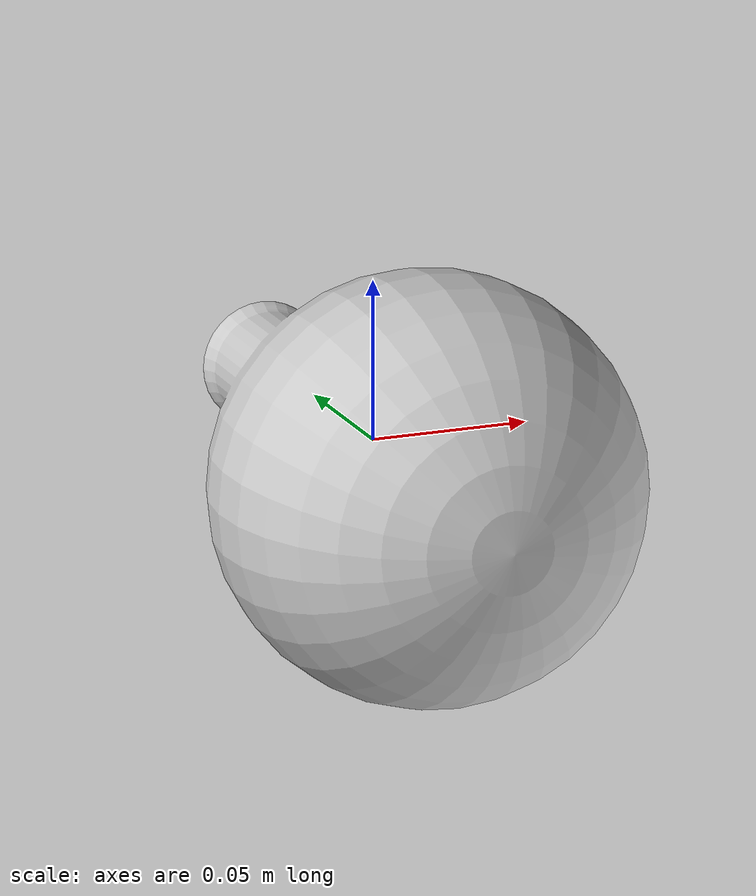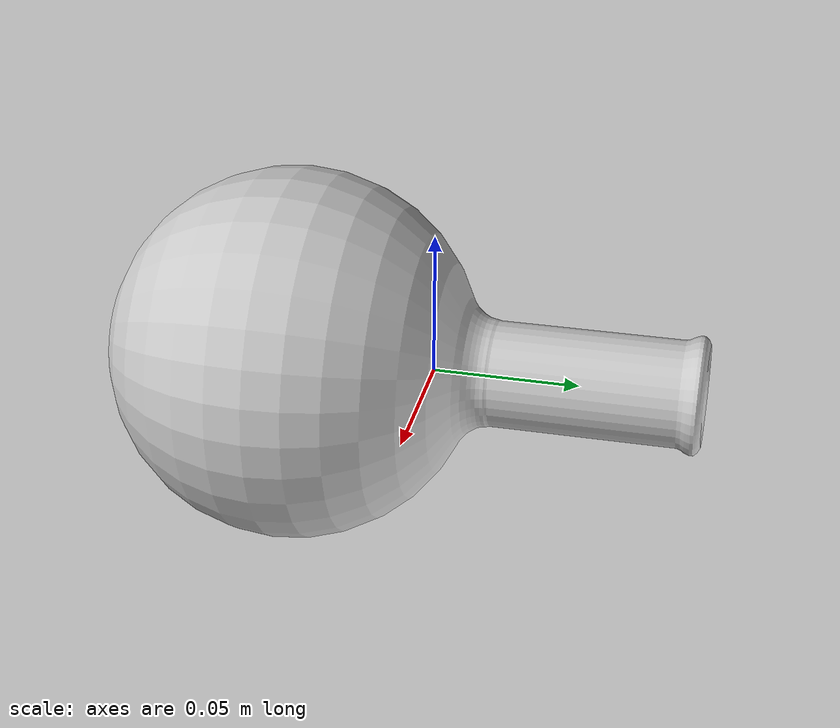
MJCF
<mujoco model="rbf">
  <default>
    <default class="visual">
      <geom group="2" type="mesh" contype="0" conaffinity="0"/>
    </default>
    <default class="collision">
      <geom group="3" type="mesh"/>
    </default>
  </default>
  <asset>
    <material name="Material.001" specular="0.5" shininess="0.36" rgba="0.800000 0.800000 0.800000 1.000000"/>
    <material name="Material.002" specular="0.5" shininess="0.36" rgba="0.800000 0.800000 0.800000 1.000000"/>
    <mesh file="rbf_0.obj"/>
    <mesh file="rbf_1.obj"/>
    <mesh file="rbf_collision_0.obj"/>
    <mesh file="rbf_collision_1.obj"/>
    <mesh file="rbf_collision_2.obj"/>
    <mesh file="rbf_collision_3.obj"/>
    <mesh file="rbf_collision_4.obj"/>
    <mesh file="rbf_collision_5.obj"/>
    <mesh file="rbf_collision_6.obj"/>
    <mesh file="rbf_collision_7.obj"/>
    <mesh file="rbf_collision_8.obj"/>
    <mesh file="rbf_collision_9.obj"/>
    <mesh file="rbf_collision_10.obj"/>
    <mesh file="rbf_collision_11.obj"/>
    <mesh file="rbf_collision_12.obj"/>
    <mesh file="rbf_collision_13.obj"/>
    <mesh file="rbf_collision_14.obj"/>
  </asset>
  <worldbody>
    <body name="rbf">
      <geom mesh="rbf_0" material="Material.002" class="visual"/>
      <geom mesh="rbf_1" material="Material.001" class="visual"/>
      <geom mesh="rbf_collision_0" rgba="0.8264837757280472 0.9207713205734238 0.3514617266872496 1" class="collision"/>
      <geom mesh="rbf_collision_1" rgba="0.9221657140999251 0.10961492646884596 0.8606494787004877 1" class="collision"/>
      <geom mesh="rbf_collision_2" rgba="0.27908857523062347 0.25545193186753146 0.4866054041388649 1" class="collision"/>
      <geom mesh="rbf_collision_3" rgba="0.9258239309452555 0.4109743142876726 0.8446387093827723 1" class="collision"/>
      <geom mesh="rbf_collision_4" rgba="0.43547315009008114 0.7755562463530604 0.7902604086121011 1" class="collision"/>
      <geom mesh="rbf_collision_5" rgba="0.6590127787548731 0.9693024771432299 0.471853613028018 1" class="collision"/>
      <geom mesh="rbf_collision_6" rgba="0.7532400078414104 0.7486719045111768 0.7986126553802768 1" class="collision"/>
      <geom mesh="rbf_collision_7" rgba="0.9602770282988367 0.2501535696359216 0.9316637303728613 1" class="collision"/>
      <geom mesh="rbf_collision_8" rgba="0.18255846437743573 0.24417168406216305 0.9922880410027831 1" class="collision"/>
      <geom mesh="rbf_collision_9" rgba="0.3879353627867277 0.7352689134782395 0.7630226449935841 1" class="collision"/>
      <geom mesh="rbf_collision_10" rgba="0.21165209054636136 0.4940248541522838 0.8955936584765788 1" class="collision"/>
      <geom mesh="rbf_collision_11" rgba="0.7370459153140306 0.41541027317422874 0.5548753080318832 1" class="collision"/>
      <geom mesh="rbf_collision_12" rgba="0.8129571170608842 0.15003565198156388 0.9483756613995177 1" class="collision"/>
      <geom mesh="rbf_collision_13" rgba="0.22190548717990966 0.5657638285905069 0.7098403171517479 1" class="collision"/>
      <geom mesh="rbf_collision_14" rgba="0.7803317321743914 0.3137262166925706 0.28644038321491005 1" class="collision"/>
    </body>
  </worldbody>
</mujoco>
